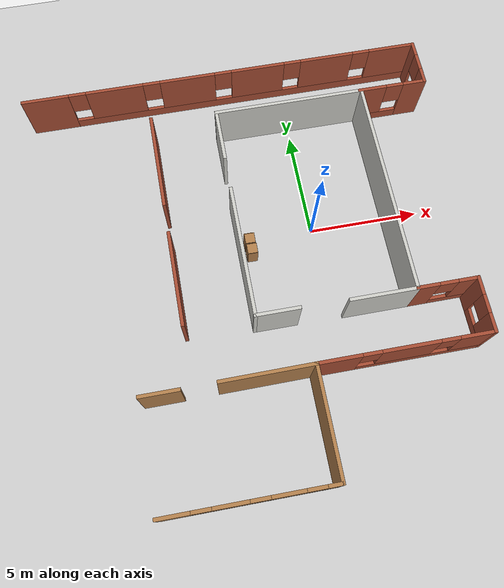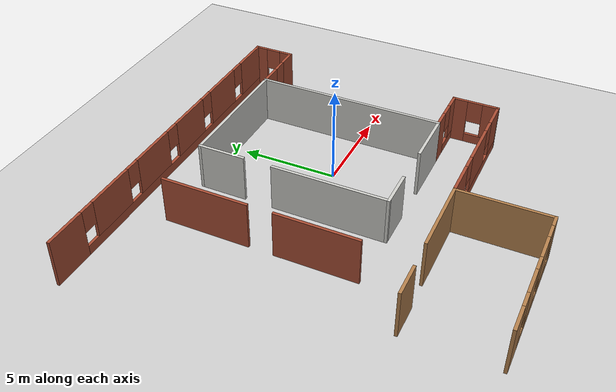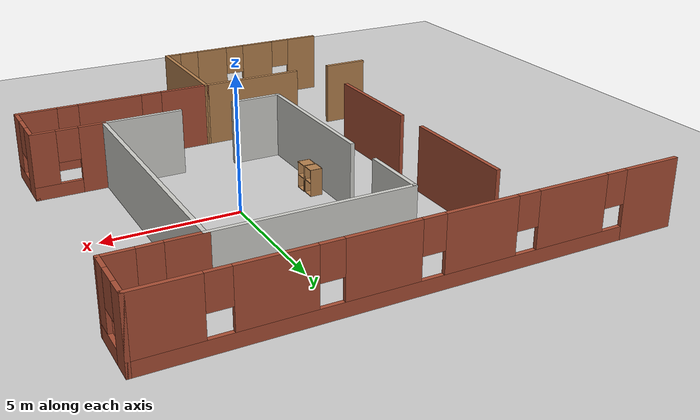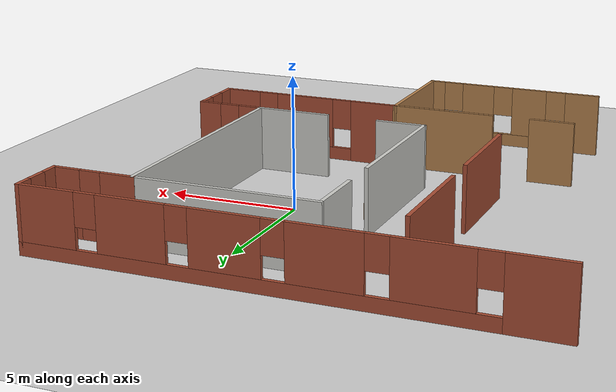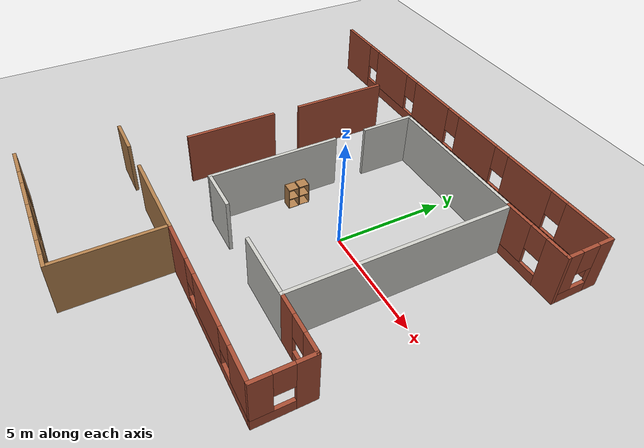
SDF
<sdf version="1.7">
 <world name="default">
  <model name="ground_plane">
   <static>1</static>
   <link name="link">
    <collision name="collision">
     <geometry><plane><normal>0 0 1</normal><size>100 100</size></plane></geometry>
     <surface><friction><ode><mu>100</mu><mu2>50</mu2></ode></friction></surface>
    </collision>
    <visual name="visual">
     <cast_shadows>0</cast_shadows>
     <geometry><plane><normal>0 0 1</normal><size>100 100</size></plane></geometry>
     <material>
      <script><uri>file://media/materials/scripts/gazebo.material</uri><name>Gazebo/Grey</name></script>
     </material>
    </visual>
   </link>
  </model>
  <model name="west_2">
   <pose>-7.94174 -1.25517 0 0 -0 0</pose>
   <link name="Wall_10">
    <collision name="Wall_10_Collision">
     <geometry><box><size>7 0.15 2.5</size></box></geometry>
     <pose>0 0 1.25 0 -0 0</pose>
    </collision>
    <visual name="Wall_10_Visual">
     <pose>0 0 1.25 0 -0 0</pose>
     <geometry><box><size>7 0.15 2.5</size></box></geometry>
     <material>
      <script><uri>file://media/materials/scripts/gazebo.material</uri><name>Gazebo/CeilingTiled</name></script>
      <ambient>1 1 1 1</ambient>
     </material>
     <meta><layer>0</layer></meta>
    </visual>
    <pose>7.8941 6.82305 0 0 -0 3.14159</pose>
   </link>
   <link name="Wall_11">
    <collision name="Wall_11_Collision">
     <geometry><box><size>2.5 0.15 2.5</size></box></geometry>
     <pose>0 0 1.25 0 -0 0</pose>
    </collision>
    <visual name="Wall_11_Visual">
     <pose>0 0 1.25 0 -0 0</pose>
     <geometry><box><size>2.5 0.15 2.5</size></box></geometry>
     <material>
      <script><uri>file://media/materials/scripts/gazebo.material</uri><name>Gazebo/CeilingTiled</name></script>
      <ambient>1 1 1 1</ambient>
     </material>
     <meta><layer>0</layer></meta>
    </visual>
    <pose>4.4691 5.64805 0 0 -0 -1.5708</pose>
   </link>
   <link name="Wall_14">
    <collision name="Wall_14_Collision">
     <geometry><box><size>2 0.15 2.5</size></box></geometry>
     <pose>0 0 1.25 0 -0 0</pose>
    </collision>
    <visual name="Wall_14_Visual">
     <pose>0 0 1.25 0 -0 0</pose>
     <geometry><box><size>2 0.15 2.5</size></box></geometry>
     <material>
      <script><uri>file://media/materials/scripts/gazebo.material</uri><name>Gazebo/CeilingTiled</name></script>
      <ambient>1 1 1 1</ambient>
     </material>
     <meta><layer>0</layer></meta>
    </visual>
    <pose>5.38836 -2.98607 0 0 -0 3.14159</pose>
   </link>
   <link name="Wall_15">
    <collision name="Wall_15_Collision">
     <geometry><box><size>6 0.15 2.5</size></box></geometry>
     <pose>0 0 1.25 0 -0 0</pose>
    </collision>
    <visual name="Wall_15_Visual">
     <pose>0 0 1.25 0 -0 0</pose>
     <geometry><box><size>6 0.15 2.5</size></box></geometry>
     <material>
      <script><uri>file://media/materials/scripts/gazebo.material</uri><name>Gazebo/CeilingTiled</name></script>
      <ambient>1 1 1 1</ambient>
     </material>
     <meta><layer>0</layer></meta>
    </visual>
    <pose>4.46336 -0.061074 0 0 -0 1.5708</pose>
   </link>
   <link name="Wall_17">
    <pose>12.6191 -3.02695 0 0 -0 0</pose>
    <visual name="Wall_17_Visual_0">
     <pose>-0.864612 0 1.25 0 -0 0</pose>
     <geometry><box><size>1.02078 0.15 2.5</size></box></geometry>
     <material>
      <script><uri>file://media/materials/scripts/gazebo.material</uri><name>Gazebo/Bricks</name></script>
      <ambient>1 1 1 1</ambient>
     </material>
     <meta><layer>0</layer></meta>
    </visual>
    <collision name="Wall_17_Collision_0">
     <geometry><box><size>1.02078 0.15 2.5</size></box></geometry>
     <pose>-0.864612 0 1.25 0 -0 0</pose>
    </collision>
    <visual name="Wall_17_Visual_1">
     <pose>0.510388 0 0.25 0 -0 0</pose>
     <geometry><box><size>1.72922 0.15 0.5</size></box></geometry>
     <material>
      <script><uri>file://media/materials/scripts/gazebo.material</uri><name>Gazebo/Bricks</name></script>
      <ambient>1 1 1 1</ambient>
     </material>
     <meta><layer>0</layer></meta>
    </visual>
    <collision name="Wall_17_Collision_1">
     <geometry><box><size>1.72922 0.15 0.5</size></box></geometry>
     <pose>0.510388 0 0.25 0 -0 0</pose>
    </collision>
    <visual name="Wall_17_Visual_2">
     <pose>0.910388 0 1.5 0 -0 0</pose>
     <geometry><box><size>0.929224 0.15 2</size></box></geometry>
     <material>
      <script><uri>file://media/materials/scripts/gazebo.material</uri><name>Gazebo/Bricks</name></script>
      <ambient>1 1 1 1</ambient>
     </material>
     <meta><layer>0</layer></meta>
    </visual>
    <collision name="Wall_17_Collision_2">
     <geometry><box><size>0.929224 0.15 2</size></box></geometry>
     <pose>0.910388 0 1.5 0 -0 0</pose>
    </collision>
    <visual name="Wall_17_Visual_3">
     <pose>0.045776 0 1.9 0 -0 0</pose>
     <geometry><box><size>0.8 0.15 1.2</size></box></geometry>
     <material>
      <script><uri>file://media/materials/scripts/gazebo.material</uri><name>Gazebo/Bricks</name></script>
      <ambient>1 1 1 1</ambient>
     </material>
     <meta><layer>0</layer></meta>
    </visual>
    <collision name="Wall_17_Collision_3">
     <geometry><box><size>0.8 0.15 1.2</size></box></geometry>
     <pose>0.045776 0 1.9 0 -0 0</pose>
    </collision>
   </link>
   <link name="Wall_18">
    <pose>13.9191 -4.20195 0 0 -0 -1.5708</pose>
    <visual name="Wall_18_Visual_0">
     <pose>-0.829909 0 1.25 0 -0 0</pose>
     <geometry><box><size>0.840181 0.15 2.5</size></box></geometry>
     <material>
      <script><uri>file://media/materials/scripts/gazebo.material</uri><name>Gazebo/Bricks</name></script>
      <ambient>1 1 1 1</ambient>
     </material>
     <meta><layer>0</layer></meta>
    </visual>
    <collision name="Wall_18_Collision_0">
     <geometry><box><size>0.840181 0.15 2.5</size></box></geometry>
     <pose>-0.829909 0 1.25 0 -0 0</pose>
    </collision>
    <visual name="Wall_18_Visual_1">
     <pose>0.420091 0 0.25 0 -0 0</pose>
     <geometry><box><size>1.65982 0.15 0.5</size></box></geometry>
     <material>
      <script><uri>file://media/materials/scripts/gazebo.material</uri><name>Gazebo/Bricks</name></script>
      <ambient>1 1 1 1</ambient>
     </material>
     <meta><layer>0</layer></meta>
    </visual>
    <collision name="Wall_18_Collision_1">
     <geometry><box><size>1.65982 0.15 0.5</size></box></geometry>
     <pose>0.420091 0 0.25 0 -0 0</pose>
    </collision>
    <visual name="Wall_18_Visual_2">
     <pose>0.820091 0 1.5 0 -0 0</pose>
     <geometry><box><size>0.859819 0.15 2</size></box></geometry>
     <material>
      <script><uri>file://media/materials/scripts/gazebo.material</uri><name>Gazebo/Bricks</name></script>
      <ambient>1 1 1 1</ambient>
     </material>
     <meta><layer>0</layer></meta>
    </visual>
    <collision name="Wall_18_Collision_2">
     <geometry><box><size>0.859819 0.15 2</size></box></geometry>
     <pose>0.820091 0 1.5 0 -0 0</pose>
    </collision>
    <visual name="Wall_18_Visual_3">
     <pose>-0.009819 0 1.9 0 -0 0</pose>
     <geometry><box><size>0.8 0.15 1.2</size></box></geometry>
     <material>
      <script><uri>file://media/materials/scripts/gazebo.material</uri><name>Gazebo/Bricks</name></script>
      <ambient>1 1 1 1</ambient>
     </material>
     <meta><layer>0</layer></meta>
    </visual>
    <collision name="Wall_18_Collision_3">
     <geometry><box><size>0.8 0.15 1.2</size></box></geometry>
     <pose>-0.009819 0 1.9 0 -0 0</pose>
    </collision>
   </link>
   <link name="Wall_38">
    <pose>5.05 8.925 0 0 -0 0</pose>
    <visual name="Wall_38_Visual_0">
     <pose>-8.28167 0 1.25 0 -0 0</pose>
     <geometry><box><size>2.18666 0.15 2.5</size></box></geometry>
     <material>
      <script><uri>file://media/materials/scripts/gazebo.material</uri><name>Gazebo/Bricks</name></script>
      <ambient>1 1 1 1</ambient>
     </material>
     <meta><layer>0</layer></meta>
    </visual>
    <collision name="Wall_38_Collision_0">
     <geometry><box><size>2.18666 0.15 2.5</size></box></geometry>
     <pose>-8.28167 0 1.25 0 -0 0</pose>
    </collision>
    <visual name="Wall_38_Visual_1">
     <pose>1.09333 0 0.25 0 -0 0</pose>
     <geometry><box><size>16.5633 0.15 0.5</size></box></geometry>
     <material>
      <script><uri>file://media/materials/scripts/gazebo.material</uri><name>Gazebo/Bricks</name></script>
      <ambient>1 1 1 1</ambient>
     </material>
     <meta><layer>0</layer></meta>
    </visual>
    <collision name="Wall_38_Collision_1">
     <geometry><box><size>16.5633 0.15 0.5</size></box></geometry>
     <pose>1.09333 0 0.25 0 -0 0</pose>
    </collision>
    <visual name="Wall_38_Visual_2">
     <pose>-5.05127 0 1.5 0 -0 0</pose>
     <geometry><box><size>2.67414 0.15 2</size></box></geometry>
     <material>
      <script><uri>file://media/materials/scripts/gazebo.material</uri><name>Gazebo/Bricks</name></script>
      <ambient>1 1 1 1</ambient>
     </material>
     <meta><layer>0</layer></meta>
    </visual>
    <collision name="Wall_38_Collision_2">
     <geometry><box><size>2.67414 0.15 2</size></box></geometry>
     <pose>-5.05127 0 1.5 0 -0 0</pose>
    </collision>
    <visual name="Wall_38_Visual_3">
     <pose>-1.61332 0 1.5 0 -0 0</pose>
     <geometry><box><size>2.60177 0.15 2</size></box></geometry>
     <material>
      <script><uri>file://media/materials/scripts/gazebo.material</uri><name>Gazebo/Bricks</name></script>
      <ambient>1 1 1 1</ambient>
     </material>
     <meta><layer>0</layer></meta>
    </visual>
    <collision name="Wall_38_Collision_3">
     <geometry><box><size>2.60177 0.15 2</size></box></geometry>
     <pose>-1.61332 0 1.5 0 -0 0</pose>
    </collision>
    <visual name="Wall_38_Visual_4">
     <pose>1.75226 0 1.5 0 -0 0</pose>
     <geometry><box><size>2.52939 0.15 2</size></box></geometry>
     <material>
      <script><uri>file://media/materials/scripts/gazebo.material</uri><name>Gazebo/Bricks</name></script>
      <ambient>1 1 1 1</ambient>
     </material>
     <meta><layer>0</layer></meta>
    </visual>
    <collision name="Wall_38_Collision_4">
     <geometry><box><size>2.52939 0.15 2</size></box></geometry>
     <pose>1.75226 0 1.5 0 -0 0</pose>
    </collision>
    <visual name="Wall_38_Visual_5">
     <pose>5.08165 0 1.5 0 -0 0</pose>
     <geometry><box><size>2.52939 0.15 2</size></box></geometry>
     <material>
      <script><uri>file://media/materials/scripts/gazebo.material</uri><name>Gazebo/Bricks</name></script>
      <ambient>1 1 1 1</ambient>
     </material>
     <meta><layer>0</layer></meta>
    </visual>
    <collision name="Wall_38_Collision_5">
     <geometry><box><size>2.52939 0.15 2</size></box></geometry>
     <pose>5.08165 0 1.5 0 -0 0</pose>
    </collision>
    <visual name="Wall_38_Visual_6">
     <pose>8.26067 0 1.5 0 -0 0</pose>
     <geometry><box><size>2.22866 0.15 2</size></box></geometry>
     <material>
      <script><uri>file://media/materials/scripts/gazebo.material</uri><name>Gazebo/Bricks</name></script>
      <ambient>1 1 1 1</ambient>
     </material>
     <meta><layer>0</layer></meta>
    </visual>
    <collision name="Wall_38_Collision_6">
     <geometry><box><size>2.22866 0.15 2</size></box></geometry>
     <pose>8.26067 0 1.5 0 -0 0</pose>
    </collision>
    <visual name="Wall_38_Visual_7">
     <pose>-6.78834 0 1.9 0 -0 0</pose>
     <geometry><box><size>0.8 0.15 1.2</size></box></geometry>
     <material>
      <script><uri>file://media/materials/scripts/gazebo.material</uri><name>Gazebo/Bricks</name></script>
      <ambient>1 1 1 1</ambient>
     </material>
     <meta><layer>0</layer></meta>
    </visual>
    <collision name="Wall_38_Collision_7">
     <geometry><box><size>0.8 0.15 1.2</size></box></geometry>
     <pose>-6.78834 0 1.9 0 -0 0</pose>
    </collision>
    <visual name="Wall_38_Visual_8">
     <pose>-3.3142 0 1.9 0 -0 0</pose>
     <geometry><box><size>0.8 0.15 1.2</size></box></geometry>
     <material>
      <script><uri>file://media/materials/scripts/gazebo.material</uri><name>Gazebo/Bricks</name></script>
      <ambient>1 1 1 1</ambient>
     </material>
     <meta><layer>0</layer></meta>
    </visual>
    <collision name="Wall_38_Collision_8">
     <geometry><box><size>0.8 0.15 1.2</size></box></geometry>
     <pose>-3.3142 0 1.9 0 -0 0</pose>
    </collision>
    <visual name="Wall_38_Visual_9">
     <pose>0.087566 0 1.9 0 -0 0</pose>
     <geometry><box><size>0.8 0.15 1.2</size></box></geometry>
     <material>
      <script><uri>file://media/materials/scripts/gazebo.material</uri><name>Gazebo/Bricks</name></script>
      <ambient>1 1 1 1</ambient>
     </material>
     <meta><layer>0</layer></meta>
    </visual>
    <collision name="Wall_38_Collision_9">
     <geometry><box><size>0.8 0.15 1.2</size></box></geometry>
     <pose>0.087566 0 1.9 0 -0 0</pose>
    </collision>
    <visual name="Wall_38_Visual_10">
     <pose>3.41695 0 1.9 0 -0 0</pose>
     <geometry><box><size>0.8 0.15 1.2</size></box></geometry>
     <material>
      <script><uri>file://media/materials/scripts/gazebo.material</uri><name>Gazebo/Bricks</name></script>
      <ambient>1 1 1 1</ambient>
     </material>
     <meta><layer>0</layer></meta>
    </visual>
    <collision name="Wall_38_Collision_10">
     <geometry><box><size>0.8 0.15 1.2</size></box></geometry>
     <pose>3.41695 0 1.9 0 -0 0</pose>
    </collision>
    <visual name="Wall_38_Visual_11">
     <pose>6.74634 0 1.9 0 -0 0</pose>
     <geometry><box><size>0.8 0.15 1.2</size></box></geometry>
     <material>
      <script><uri>file://media/materials/scripts/gazebo.material</uri><name>Gazebo/Bricks</name></script>
      <ambient>1 1 1 1</ambient>
     </material>
     <meta><layer>0</layer></meta>
    </visual>
    <collision name="Wall_38_Collision_11">
     <geometry><box><size>0.8 0.15 1.2</size></box></geometry>
     <pose>6.74634 0 1.9 0 -0 0</pose>
    </collision>
   </link>
   <link name="Wall_39">
    <pose>14.35 7.875 0 0 -0 -1.5708</pose>
    <visual name="Wall_39_Visual_0">
     <pose>-0.772497 0 1.25 0 -0 0</pose>
     <geometry><box><size>0.705007 0.15 2.5</size></box></geometry>
     <material>
      <script><uri>file://media/materials/scripts/gazebo.material</uri><name>Gazebo/Bricks</name></script>
      <ambient>1 1 1 1</ambient>
     </material>
     <meta><layer>0</layer></meta>
    </visual>
    <collision name="Wall_39_Collision_0">
     <geometry><box><size>0.705007 0.15 2.5</size></box></geometry>
     <pose>-0.772497 0 1.25 0 -0 0</pose>
    </collision>
    <visual name="Wall_39_Visual_1">
     <pose>0.352503 0 0.25 0 -0 0</pose>
     <geometry><box><size>1.54499 0.15 0.5</size></box></geometry>
     <material>
      <script><uri>file://media/materials/scripts/gazebo.material</uri><name>Gazebo/Bricks</name></script>
      <ambient>1 1 1 1</ambient>
     </material>
     <meta><layer>0</layer></meta>
    </visual>
    <collision name="Wall_39_Collision_1">
     <geometry><box><size>1.54499 0.15 0.5</size></box></geometry>
     <pose>0.352503 0 0.25 0 -0 0</pose>
    </collision>
    <visual name="Wall_39_Visual_2">
     <pose>0.752503 0 1.5 0 -0 0</pose>
     <geometry><box><size>0.744993 0.15 2</size></box></geometry>
     <material>
      <script><uri>file://media/materials/scripts/gazebo.material</uri><name>Gazebo/Bricks</name></script>
      <ambient>1 1 1 1</ambient>
     </material>
     <meta><layer>0</layer></meta>
    </visual>
    <collision name="Wall_39_Collision_2">
     <geometry><box><size>0.744993 0.15 2</size></box></geometry>
     <pose>0.752503 0 1.5 0 -0 0</pose>
    </collision>
    <visual name="Wall_39_Visual_3">
     <pose>-0.019993 0 1.9 0 -0 0</pose>
     <geometry><box><size>0.8 0.15 1.2</size></box></geometry>
     <material>
      <script><uri>file://media/materials/scripts/gazebo.material</uri><name>Gazebo/Bricks</name></script>
      <ambient>1 1 1 1</ambient>
     </material>
     <meta><layer>0</layer></meta>
    </visual>
    <collision name="Wall_39_Collision_3">
     <geometry><box><size>0.8 0.15 1.2</size></box></geometry>
     <pose>-0.019993 0 1.9 0 -0 0</pose>
    </collision>
   </link>
   <link name="Wall_4">
    <collision name="Wall_4_Collision">
     <geometry><box><size>10 0.15 2.5</size></box></geometry>
     <pose>0 0 1.25 0 -0 0</pose>
    </collision>
    <visual name="Wall_4_Visual">
     <pose>0 0 1.25 0 -0 0</pose>
     <geometry><box><size>10 0.15 2.5</size></box></geometry>
     <material>
      <script><uri>file://media/materials/scripts/gazebo.material</uri><name>Gazebo/CeilingTiled</name></script>
      <ambient>1 1 1 1</ambient>
     </material>
     <meta><layer>0</layer></meta>
    </visual>
    <pose>11.3191 1.89805 0 0 -0 -1.5708</pose>
   </link>
   <link name="Wall_40">
    <pose>12.8 6.825 0 0 -0 3.14159</pose>
    <visual name="Wall_40_Visual_0">
     <pose>-1.0716 0 1.25 0 -0 0</pose>
     <geometry><box><size>1.1068 0.15 2.5</size></box></geometry>
     <material>
      <script><uri>file://media/materials/scripts/gazebo.material</uri><name>Gazebo/Bricks</name></script>
      <ambient>1 1 1 1</ambient>
     </material>
     <meta><layer>0</layer></meta>
    </visual>
    <collision name="Wall_40_Collision_0">
     <geometry><box><size>1.1068 0.15 2.5</size></box></geometry>
     <pose>-1.0716 0 1.25 0 -0 0</pose>
    </collision>
    <visual name="Wall_40_Visual_1">
     <pose>0.5534 0 0.25 0 -0 0</pose>
     <geometry><box><size>2.1432 0.15 0.5</size></box></geometry>
     <material>
      <script><uri>file://media/materials/scripts/gazebo.material</uri><name>Gazebo/Bricks</name></script>
      <ambient>1 1 1 1</ambient>
     </material>
     <meta><layer>0</layer></meta>
    </visual>
    <collision name="Wall_40_Collision_1">
     <geometry><box><size>2.1432 0.15 0.5</size></box></geometry>
     <pose>0.5534 0 0.25 0 -0 0</pose>
    </collision>
    <visual name="Wall_40_Visual_2">
     <pose>0.9534 0 1.5 0 -0 0</pose>
     <geometry><box><size>1.3432 0.15 2</size></box></geometry>
     <material>
      <script><uri>file://media/materials/scripts/gazebo.material</uri><name>Gazebo/Bricks</name></script>
      <ambient>1 1 1 1</ambient>
     </material>
     <meta><layer>0</layer></meta>
    </visual>
    <collision name="Wall_40_Collision_2">
     <geometry><box><size>1.3432 0.15 2</size></box></geometry>
     <pose>0.9534 0 1.5 0 -0 0</pose>
    </collision>
    <visual name="Wall_40_Visual_3">
     <pose>-0.118201 0 1.9 0 -0 0</pose>
     <geometry><box><size>0.8 0.15 1.2</size></box></geometry>
     <material>
      <script><uri>file://media/materials/scripts/gazebo.material</uri><name>Gazebo/Bricks</name></script>
      <ambient>1 1 1 1</ambient>
     </material>
     <meta><layer>0</layer></meta>
    </visual>
    <collision name="Wall_40_Collision_3">
     <geometry><box><size>0.8 0.15 1.2</size></box></geometry>
     <pose>-0.118201 0 1.9 0 -0 0</pose>
    </collision>
   </link>
   <link name="Wall_43">
    <collision name="Wall_43_Collision">
     <geometry><box><size>4.25 0.15 2.5</size></box></geometry>
     <pose>0 0 1.25 0 -0 0</pose>
    </collision>
    <visual name="Wall_43_Visual">
     <pose>0 0 1.25 0 -0 0</pose>
     <geometry><box><size>4.25 0.15 2.5</size></box></geometry>
     <material>
      <script><uri>file://media/materials/scripts/gazebo.material</uri><name>Gazebo/Bricks</name></script>
      <ambient>1 1 1 1</ambient>
     </material>
     <meta><layer>0</layer></meta>
    </visual>
    <pose>1.47586 -0.796539 0 0 -0 -1.5708</pose>
   </link>
   <link name="Wall_47">
    <collision name="Wall_47_Collision">
     <geometry><box><size>4.5 0.15 2.5</size></box></geometry>
     <pose>0 0 1.25 0 -0 0</pose>
    </collision>
    <visual name="Wall_47_Visual">
     <pose>0 0 1.25 0 -0 0</pose>
     <geometry><box><size>4.5 0.15 2.5</size></box></geometry>
     <material>
      <script><uri>file://media/materials/scripts/gazebo.material</uri><name>Gazebo/Bricks</name></script>
      <ambient>1 1 1 1</ambient>
     </material>
     <meta><layer>0</layer></meta>
    </visual>
    <pose>1.47586 4.82846 0 0 -0 -1.5708</pose>
   </link>
   <link name="Wall_7">
    <collision name="Wall_7_Collision">
     <geometry><box><size>3 0.15 2.5</size></box></geometry>
     <pose>0 0 1.25 0 -0 0</pose>
    </collision>
    <visual name="Wall_7_Visual">
     <pose>0 0 1.25 0 -0 0</pose>
     <geometry><box><size>3 0.15 2.5</size></box></geometry>
     <material>
      <script><uri>file://media/materials/scripts/gazebo.material</uri><name>Gazebo/CeilingTiled</name></script>
      <ambient>1 1 1 1</ambient>
     </material>
     <meta><layer>0</layer></meta>
    </visual>
    <pose>9.8941 -3.02695 0 0 -0 3.14159</pose>
   </link>
   <link name="Wall_71">
    <pose>2.95196 -9.97693 0 0 -0 0</pose>
    <visual name="Wall_71_Visual_0">
     <pose>-2.93434 0 1.25 0 -0 0</pose>
     <geometry><box><size>1.38131 0.15 2.5</size></box></geometry>
     <material>
      <script><uri>file://media/materials/scripts/gazebo.material</uri><name>Gazebo/Wood</name></script>
      <ambient>1 1 1 1</ambient>
     </material>
     <meta><layer>0</layer></meta>
    </visual>
    <collision name="Wall_71_Collision_0">
     <geometry><box><size>1.38131 0.15 2.5</size></box></geometry>
     <pose>-2.93434 0 1.25 0 -0 0</pose>
    </collision>
    <visual name="Wall_71_Visual_1">
     <pose>0.690656 0 0.25 0 -0 0</pose>
     <geometry><box><size>5.86869 0.15 0.5</size></box></geometry>
     <material>
      <script><uri>file://media/materials/scripts/gazebo.material</uri><name>Gazebo/Wood</name></script>
      <ambient>1 1 1 1</ambient>
     </material>
     <meta><layer>0</layer></meta>
    </visual>
    <collision name="Wall_71_Collision_1">
     <geometry><box><size>5.86869 0.15 0.5</size></box></geometry>
     <pose>0.690656 0 0.25 0 -0 0</pose>
    </collision>
    <visual name="Wall_71_Visual_2">
     <pose>-0.72002 0 1.5 0 -0 0</pose>
     <geometry><box><size>1.44734 0.15 2</size></box></geometry>
     <material>
      <script><uri>file://media/materials/scripts/gazebo.material</uri><name>Gazebo/Wood</name></script>
      <ambient>1 1 1 1</ambient>
     </material>
     <meta><layer>0</layer></meta>
    </visual>
    <collision name="Wall_71_Collision_2">
     <geometry><box><size>1.44734 0.15 2</size></box></geometry>
     <pose>-0.72002 0 1.5 0 -0 0</pose>
    </collision>
    <visual name="Wall_71_Visual_3">
     <pose>1.4857 0 1.5 0 -0 0</pose>
     <geometry><box><size>1.3641 0.15 2</size></box></geometry>
     <material>
      <script><uri>file://media/materials/scripts/gazebo.material</uri><name>Gazebo/Wood</name></script>
      <ambient>1 1 1 1</ambient>
     </material>
     <meta><layer>0</layer></meta>
    </visual>
    <collision name="Wall_71_Collision_3">
     <geometry><box><size>1.3641 0.15 2</size></box></geometry>
     <pose>1.4857 0 1.5 0 -0 0</pose>
    </collision>
    <visual name="Wall_71_Visual_4">
     <pose>3.29637 0 1.5 0 -0 0</pose>
     <geometry><box><size>0.65725 0.15 2</size></box></geometry>
     <material>
      <script><uri>file://media/materials/scripts/gazebo.material</uri><name>Gazebo/Wood</name></script>
      <ambient>1 1 1 1</ambient>
     </material>
     <meta><layer>0</layer></meta>
    </visual>
    <collision name="Wall_71_Collision_4">
     <geometry><box><size>0.65725 0.15 2</size></box></geometry>
     <pose>3.29637 0 1.5 0 -0 0</pose>
    </collision>
    <visual name="Wall_71_Visual_5">
     <pose>-1.84369 0 1.9 0 -0 0</pose>
     <geometry><box><size>0.8 0.15 1.2</size></box></geometry>
     <material>
      <script><uri>file://media/materials/scripts/gazebo.material</uri><name>Gazebo/Wood</name></script>
      <ambient>1 1 1 1</ambient>
     </material>
     <meta><layer>0</layer></meta>
    </visual>
    <collision name="Wall_71_Collision_5">
     <geometry><box><size>0.8 0.15 1.2</size></box></geometry>
     <pose>-1.84369 0 1.9 0 -0 0</pose>
    </collision>
    <visual name="Wall_71_Visual_6">
     <pose>0.403648 0 1.9 0 -0 0</pose>
     <geometry><box><size>0.8 0.15 1.2</size></box></geometry>
     <material>
      <script><uri>file://media/materials/scripts/gazebo.material</uri><name>Gazebo/Wood</name></script>
      <ambient>1 1 1 1</ambient>
     </material>
     <meta><layer>0</layer></meta>
    </visual>
    <collision name="Wall_71_Collision_6">
     <geometry><box><size>0.8 0.15 1.2</size></box></geometry>
     <pose>0.403648 0 1.9 0 -0 0</pose>
    </collision>
    <visual name="Wall_71_Visual_7">
     <pose>2.56775 0 1.9 0 -0 0</pose>
     <geometry><box><size>0.8 0.15 1.2</size></box></geometry>
     <material>
      <script><uri>file://media/materials/scripts/gazebo.material</uri><name>Gazebo/Wood</name></script>
      <ambient>1 1 1 1</ambient>
     </material>
     <meta><layer>0</layer></meta>
    </visual>
    <collision name="Wall_71_Collision_7">
     <geometry><box><size>0.8 0.15 1.2</size></box></geometry>
     <pose>2.56775 0 1.9 0 -0 0</pose>
    </collision>
   </link>
   <link name="Wall_72">
    <collision name="Wall_72_Collision">
     <geometry><box><size>4.75 0.15 2.5</size></box></geometry>
     <pose>0 0 1.25 0 -0 0</pose>
    </collision>
    <visual name="Wall_72_Visual">
     <pose>0 0 1.25 0 -0 0</pose>
     <geometry><box><size>4.75 0.15 2.5</size></box></geometry>
     <material>
      <script><uri>file://media/materials/scripts/gazebo.material</uri><name>Gazebo/Wood</name></script>
      <ambient>1 1 1 1</ambient>
     </material>
     <meta><layer>0</layer></meta>
    </visual>
    <pose>6.50196 -7.67693 0 0 -0 1.5708</pose>
   </link>
   <link name="Wall_89">
    <collision name="Wall_89_Collision">
     <geometry><box><size>1.75 0.15 2.5</size></box></geometry>
     <pose>0 0 1.25 0 -0 0</pose>
    </collision>
    <visual name="Wall_89_Visual">
     <pose>0 0 1.25 0 -0 0</pose>
     <geometry><box><size>1.75 0.15 2.5</size></box></geometry>
     <material>
      <script><uri>file://media/materials/scripts/gazebo.material</uri><name>Gazebo/Wood</name></script>
      <ambient>1 1 1 1</ambient>
     </material>
     <meta><layer>0</layer></meta>
    </visual>
    <pose>0.15 -5.425 0 0 -0 0</pose>
   </link>
   <link name="Wall_91">
    <collision name="Wall_91_Collision">
     <geometry><box><size>4.11348 0.15 2.5</size></box></geometry>
     <pose>0 0 1.25 0 -0 0</pose>
    </collision>
    <visual name="Wall_91_Visual">
     <pose>0 0 1.25 0 -0 0</pose>
     <geometry><box><size>4.11348 0.15 2.5</size></box></geometry>
     <material>
      <script><uri>file://media/materials/scripts/gazebo.material</uri><name>Gazebo/Wood</name></script>
      <ambient>1 1 1 1</ambient>
     </material>
     <meta><layer>0</layer></meta>
    </visual>
    <pose>4.52025 -5.38787 0 0 -0 0.005517</pose>
   </link>
   <link name="Wall_92">
    <pose>10.2105 -5.37694 0 0 -0 -2e-06</pose>
    <visual name="Wall_92_Visual_0">
     <pose>-2.80072 0 1.25 0 -0 0</pose>
     <geometry><box><size>1.9657 0.15 2.5</size></box></geometry>
     <material>
      <script><uri>file://media/materials/scripts/gazebo.material</uri><name>Gazebo/Bricks</name></script>
      <ambient>1 1 1 1</ambient>
     </material>
     <meta><layer>0</layer></meta>
    </visual>
    <collision name="Wall_92_Collision_0">
     <geometry><box><size>1.9657 0.15 2.5</size></box></geometry>
     <pose>-2.80072 0 1.25 0 -0 0</pose>
    </collision>
    <visual name="Wall_92_Visual_1">
     <pose>0.982849 0 0.25 0 -0 0</pose>
     <geometry><box><size>5.60145 0.15 0.5</size></box></geometry>
     <material>
      <script><uri>file://media/materials/scripts/gazebo.material</uri><name>Gazebo/Bricks</name></script>
      <ambient>1 1 1 1</ambient>
     </material>
     <meta><layer>0</layer></meta>
    </visual>
    <collision name="Wall_92_Collision_1">
     <geometry><box><size>5.60145 0.15 0.5</size></box></geometry>
     <pose>0.982849 0 0.25 0 -0 0</pose>
    </collision>
    <visual name="Wall_92_Visual_2">
     <pose>0.21063 0 1.5 0 -0 0</pose>
     <geometry><box><size>2.45701 0.15 2</size></box></geometry>
     <material>
      <script><uri>file://media/materials/scripts/gazebo.material</uri><name>Gazebo/Bricks</name></script>
      <ambient>1 1 1 1</ambient>
     </material>
     <meta><layer>0</layer></meta>
    </visual>
    <collision name="Wall_92_Collision_2">
     <geometry><box><size>2.45701 0.15 2</size></box></geometry>
     <pose>0.21063 0 1.5 0 -0 0</pose>
    </collision>
    <visual name="Wall_92_Visual_3">
     <pose>3.01135 0 1.5 0 -0 0</pose>
     <geometry><box><size>1.54444 0.15 2</size></box></geometry>
     <material>
      <script><uri>file://media/materials/scripts/gazebo.material</uri><name>Gazebo/Bricks</name></script>
      <ambient>1 1 1 1</ambient>
     </material>
     <meta><layer>0</layer></meta>
    </visual>
    <collision name="Wall_92_Collision_3">
     <geometry><box><size>1.54444 0.15 2</size></box></geometry>
     <pose>3.01135 0 1.5 0 -0 0</pose>
    </collision>
    <visual name="Wall_92_Visual_4">
     <pose>-1.41787 0 1.9 0 -0 0</pose>
     <geometry><box><size>0.8 0.15 1.2</size></box></geometry>
     <material>
      <script><uri>file://media/materials/scripts/gazebo.material</uri><name>Gazebo/Bricks</name></script>
      <ambient>1 1 1 1</ambient>
     </material>
     <meta><layer>0</layer></meta>
    </visual>
    <collision name="Wall_92_Collision_4">
     <geometry><box><size>0.8 0.15 1.2</size></box></geometry>
     <pose>-1.41787 0 1.9 0 -0 0</pose>
    </collision>
    <visual name="Wall_92_Visual_5">
     <pose>1.83913 0 1.9 0 -0 0</pose>
     <geometry><box><size>0.8 0.15 1.2</size></box></geometry>
     <material>
      <script><uri>file://media/materials/scripts/gazebo.material</uri><name>Gazebo/Bricks</name></script>
      <ambient>1 1 1 1</ambient>
     </material>
     <meta><layer>0</layer></meta>
    </visual>
    <collision name="Wall_92_Collision_5">
     <geometry><box><size>0.8 0.15 1.2</size></box></geometry>
     <pose>1.83913 0 1.9 0 -0 0</pose>
    </collision>
   </link>
   <static>1</static>
  </model>
  <model name="cabinet">
   <static>1</static>
   <link name="cabinet_bottom_plate">
    <inertial>
     <pose>0 0 -1 0 -0 0</pose>
     <inertia><ixx>2.05</ixx><ixy>0</ixy><ixz>0</ixz><iyy>2.05</iyy><iyz>0</iyz><izz>2.05</izz></inertia>
     <mass>25</mass>
    </inertial>
    <collision name="cabinet_bottom_plate_geom">
     <pose>0 0 0.01 0 -0 0</pose>
     <geometry><box><size>0.45 0.45 0.02</size></box></geometry>
    </collision>
    <visual name="cabinet_bottom_plate_geom_visual">
     <pose>0 0 0.01 0 -0 0</pose>
     <geometry><box><size>0.45 0.45 0.02</size></box></geometry>
     <material>
      <script><uri>file://media/materials/scripts/gazebo.material</uri><name>Gazebo/Wood</name></script>
     </material>
    </visual>
    <collision name="cabinet_bottom_plate_geom_cabinet_back_plate">
     <pose>0.235 0 0.51 0 -0 0</pose>
     <geometry><box><size>0.02 0.45 1.02</size></box></geometry>
    </collision>
    <visual name="cabinet_bottom_plate_geom_cabinet_back_plate_visual">
     <pose>0.235 0 0.51 0 -0 0</pose>
     <geometry><box><size>0.02 0.45 1.02</size></box></geometry>
     <material>
      <script><uri>file://media/materials/scripts/gazebo.material</uri><name>Gazebo/Wood</name></script>
     </material>
    </visual>
    <collision name="cabinet_bottom_plate_geom_cabinet_left_plate">
     <pose>0 0.235 0.51 0 -0 0</pose>
     <geometry><box><size>0.45 0.02 1.02</size></box></geometry>
    </collision>
    <visual name="cabinet_bottom_plate_geom_cabinet_left_plate_visual">
     <pose>0 0.235 0.51 0 -0 0</pose>
     <geometry><box><size>0.45 0.02 1.02</size></box></geometry>
     <material>
      <script><uri>file://media/materials/scripts/gazebo.material</uri><name>Gazebo/Wood</name></script>
     </material>
    </visual>
    <collision name="cabinet_bottom_plate_geom_cabinet_middle_plate">
     <pose>0 0 0.51 0 -0 0</pose>
     <geometry><box><size>0.45 0.45 0.02</size></box></geometry>
    </collision>
    <visual name="cabinet_bottom_plate_geom_cabinet_middle_plate_visual">
     <pose>0 0 0.51 0 -0 0</pose>
     <geometry><box><size>0.45 0.45 0.02</size></box></geometry>
     <material>
      <script><uri>file://media/materials/scripts/gazebo.material</uri><name>Gazebo/Wood</name></script>
     </material>
    </visual>
    <collision name="cabinet_bottom_plate_geom_cabinet_right_plate">
     <pose>0 -0.235 0.51 0 -0 0</pose>
     <geometry><box><size>0.45 0.02 1.02</size></box></geometry>
    </collision>
    <visual name="cabinet_bottom_plate_geom_cabinet_right_plate_visual">
     <pose>0 -0.235 0.51 0 -0 0</pose>
     <geometry><box><size>0.45 0.02 1.02</size></box></geometry>
     <material>
      <script><uri>file://media/materials/scripts/gazebo.material</uri><name>Gazebo/Wood</name></script>
     </material>
    </visual>
    <collision name="cabinet_bottom_plate_geom_cabinet_top_plate">
     <pose>0 0 1.01 0 -0 0</pose>
     <geometry><box><size>0.45 0.45 0.02</size></box></geometry>
    </collision>
    <visual name="cabinet_bottom_plate_geom_cabinet_top_plate_visual">
     <pose>0 0 1.01 0 -0 0</pose>
     <geometry><box><size>0.45 0.45 0.02</size></box></geometry>
     <material>
      <script><uri>file://media/materials/scripts/gazebo.material</uri><name>Gazebo/Wood</name></script>
     </material>
    </visual>
   </link>
   <pose>-2.94376 -0.752043 0 0 -0 3.12672</pose>
  </model>
  <model name="cabinet_clone">
   <static>1</static>
   <link name="cabinet_bottom_plate">
    <inertial>
     <pose>0 0 -1 0 -0 0</pose>
     <inertia><ixx>2.05</ixx><ixy>0</ixy><ixz>0</ixz><iyy>2.05</iyy><iyz>0</iyz><izz>2.05</izz></inertia>
     <mass>25</mass>
    </inertial>
    <collision name="cabinet_bottom_plate_geom">
     <pose>0 0 0.01 0 -0 0</pose>
     <geometry><box><size>0.45 0.45 0.02</size></box></geometry>
    </collision>
    <visual name="cabinet_bottom_plate_geom_visual">
     <pose>0 0 0.01 0 -0 0</pose>
     <geometry><box><size>0.45 0.45 0.02</size></box></geometry>
     <material>
      <script><uri>file://media/materials/scripts/gazebo.material</uri><name>Gazebo/Wood</name></script>
     </material>
    </visual>
    <collision name="cabinet_bottom_plate_geom_cabinet_back_plate">
     <pose>0.235 0 0.51 0 -0 0</pose>
     <geometry><box><size>0.02 0.45 1.02</size></box></geometry>
    </collision>
    <visual name="cabinet_bottom_plate_geom_cabinet_back_plate_visual">
     <pose>0.235 0 0.51 0 -0 0</pose>
     <geometry><box><size>0.02 0.45 1.02</size></box></geometry>
     <material>
      <script><uri>file://media/materials/scripts/gazebo.material</uri><name>Gazebo/Wood</name></script>
     </material>
    </visual>
    <collision name="cabinet_bottom_plate_geom_cabinet_left_plate">
     <pose>0 0.235 0.51 0 -0 0</pose>
     <geometry><box><size>0.45 0.02 1.02</size></box></geometry>
    </collision>
    <visual name="cabinet_bottom_plate_geom_cabinet_left_plate_visual">
     <pose>0 0.235 0.51 0 -0 0</pose>
     <geometry><box><size>0.45 0.02 1.02</size></box></geometry>
     <material>
      <script><uri>file://media/materials/scripts/gazebo.material</uri><name>Gazebo/Wood</name></script>
     </material>
    </visual>
    <collision name="cabinet_bottom_plate_geom_cabinet_middle_plate">
     <pose>0 0 0.51 0 -0 0</pose>
     <geometry><box><size>0.45 0.45 0.02</size></box></geometry>
    </collision>
    <visual name="cabinet_bottom_plate_geom_cabinet_middle_plate_visual">
     <pose>0 0 0.51 0 -0 0</pose>
     <geometry><box><size>0.45 0.45 0.02</size></box></geometry>
     <material>
      <script><uri>file://media/materials/scripts/gazebo.material</uri><name>Gazebo/Wood</name></script>
     </material>
    </visual>
    <collision name="cabinet_bottom_plate_geom_cabinet_right_plate">
     <pose>0 -0.235 0.51 0 -0 0</pose>
     <geometry><box><size>0.45 0.02 1.02</size></box></geometry>
    </collision>
    <visual name="cabinet_bottom_plate_geom_cabinet_right_plate_visual">
     <pose>0 -0.235 0.51 0 -0 0</pose>
     <geometry><box><size>0.45 0.02 1.02</size></box></geometry>
     <material>
      <script><uri>file://media/materials/scripts/gazebo.material</uri><name>Gazebo/Wood</name></script>
     </material>
    </visual>
    <collision name="cabinet_bottom_plate_geom_cabinet_top_plate">
     <pose>0 0 1.01 0 -0 0</pose>
     <geometry><box><size>0.45 0.45 0.02</size></box></geometry>
    </collision>
    <visual name="cabinet_bottom_plate_geom_cabinet_top_plate_visual">
     <pose>0 0 1.01 0 -0 0</pose>
     <geometry><box><size>0.45 0.45 0.02</size></box></geometry>
     <material>
      <script><uri>file://media/materials/scripts/gazebo.material</uri><name>Gazebo/Wood</name></script>
     </material>
    </visual>
   </link>
   <pose>-2.96051 -0.245355 0 0 -0 3.12672</pose>
  </model>
 </world>
</sdf>
